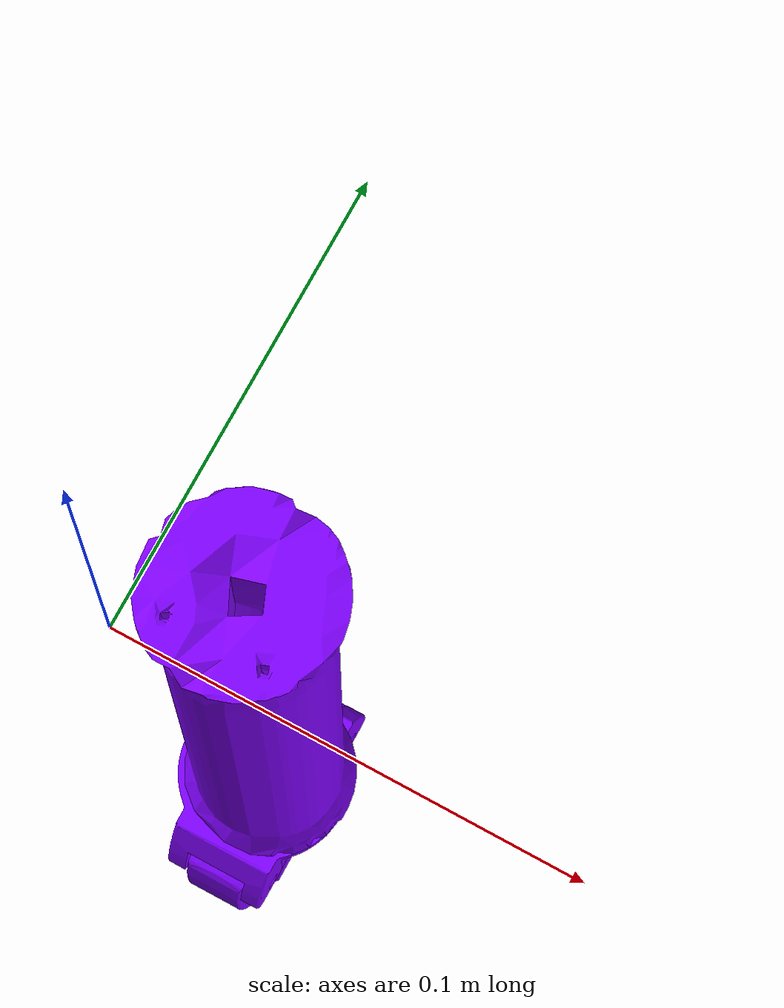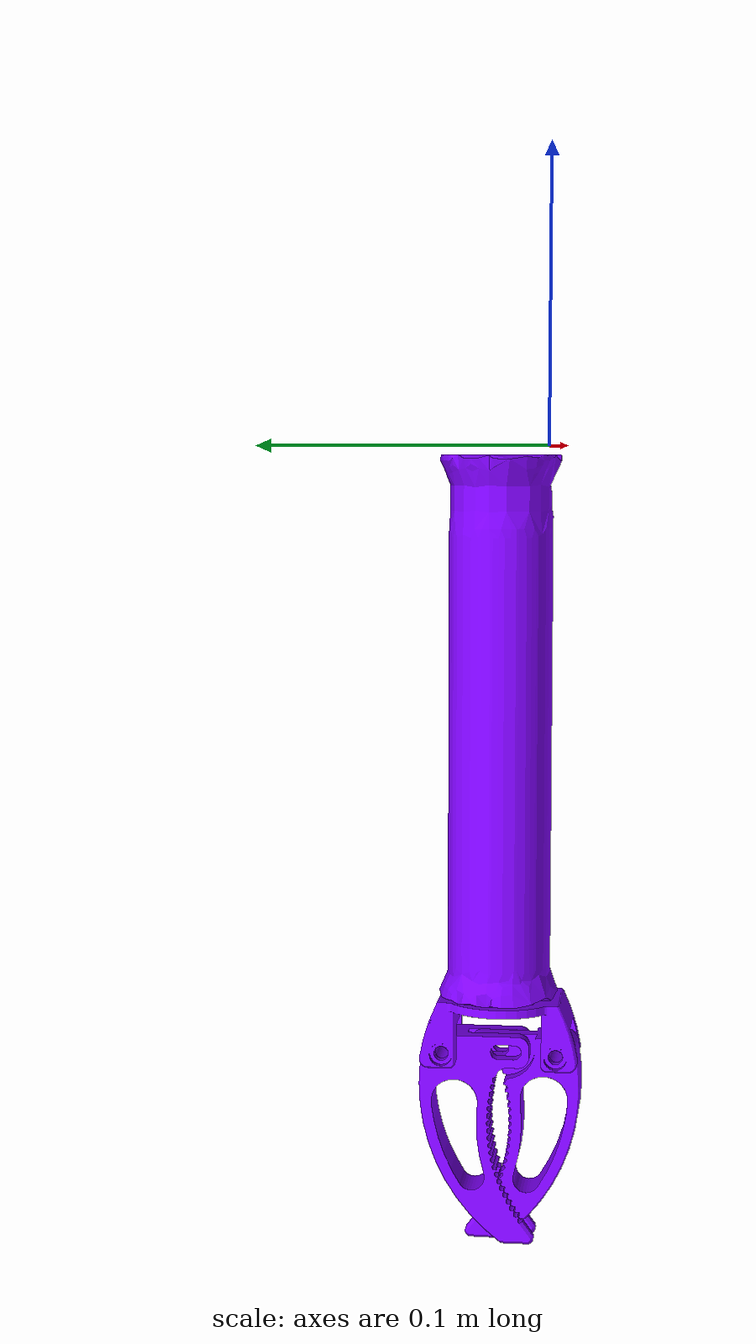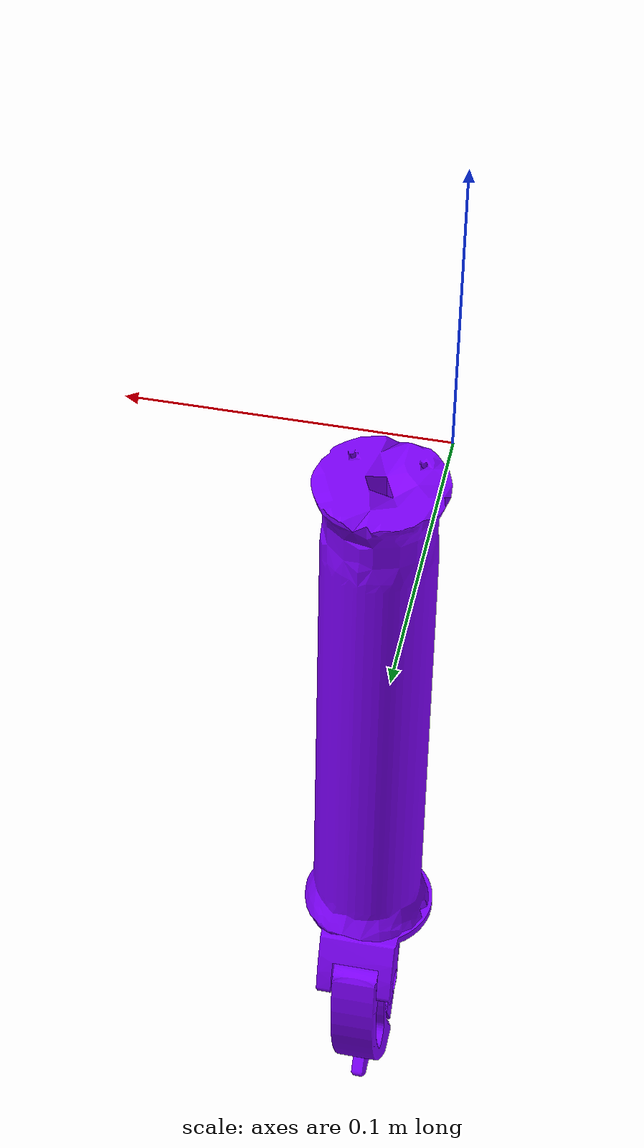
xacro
<?xml version="1.0"?>
<robot name="newton_subsea_gripper" xmlns:xacro="http://ros.org/wiki/xacro">

    <!-- Arm Link -->
    <link name="arm_link">
        <visual>
            <geometry>
                <mesh
                    filename="$(find hippo_sim)/models/newton_subsea_gripper/meshes/arm_visual.stl" />
            </geometry>
            <material name="purple">
                <color rgba="0.5 0 1 1" />
            </material>
        </visual>
        <collision>
            <geometry>
                <mesh filename="$(find hippo_sim)/models/newton_subsea_gripper/meshes/arm.stl" />
            </geometry>
        </collision>
        <inertial>
            <mass value="1.0" />
            <origin xyz="0 0 0" rpy="0 0 0" />
            <inertia ixx="0.1" ixy="0" ixz="0" iyy="0.1" iyz="0" izz="0.1" />
        </inertial>
    </link>

    <!-- Hand Link -->
    <link name="hand">
        <visual>
            <geometry>
                <mesh
                    filename="$(find hippo_sim)/models/newton_subsea_gripper/meshes/hand_visual.stl" />
            </geometry>
            <origin xyz="0 0 0" rpy="0 -3.1415 1.57" />
            <material name="purple" />
        </visual>
        <collision>
            <geometry>
                <mesh filename="$(find hippo_sim)/models/newton_subsea_gripper/meshes/hand.stl" />
            </geometry>
            <origin xyz="0 0 0" rpy="0 -3.1415 1.57" />
        </collision>
    </link>

    <!-- Joint between Arm and Hand -->
    <joint name="arm_hand_joint" type="fixed">
        <parent link="arm_link" />
        <child link="hand" />
        <!-- arm is 195.5 mm long-->
        <!-- offset of 0.035 is needed since the rotation would need to be yaw =-1.57 and not
        1.57-->
        <!-- if correct rotation is used everything aligns but gripper is the wrong way around -->
        <origin xyz="0.035 0.035 -0.1955" rpy="0 0 0" />
    </joint>

    <!-- Left Finger Link -->
    <link name="left_finger">
        <visual>
            <geometry>
                <mesh
                    filename="$(find hippo_sim)/models/newton_subsea_gripper/meshes/jaw_outer_visual.stl" />
            </geometry>
            <origin xyz="0 0 0.0" rpy="3.1415 0 -1.57" />
            <material name="purple" />
        </visual>
        <collision>
            <geometry>
                <mesh filename="$(find hippo_sim)/models/newton_subsea_gripper/meshes/jaw_outer.stl" />
            </geometry>
            <origin xyz="0 0 0.0" rpy="3.1415 0 -1.57" />
        </collision>
        <inertial name="left_finger_inertial">
            <mass value="0.001" />
            <inertia ixx="0.1" ixy="0" ixz="0" iyy="0.1" iyz="0" izz="0.1" />
        </inertial>
    </link>

    <!-- Right Finger Link -->
    <link name="right_finger">
        <visual>
            <geometry>
                <mesh
                    filename="$(find hippo_sim)/models/newton_subsea_gripper/meshes/jaw_inner_visual.stl" />
            </geometry>
            <origin xyz="0 0 0.0" rpy="3.1415 0 -1.57" />
            <material name="purple" />
        </visual>
        <collision>
            <geometry>
                <mesh filename="$(find hippo_sim)/models/newton_subsea_gripper/meshes/jaw_inner.stl" />
            </geometry>
            <origin xyz="0 0 0.0" rpy="3.1415 0 -1.57" />
        </collision>
        <inertial name="right_finger_inertial">
            <mass value="0.001" />
            <inertia ixx="0.1" ixy="0" ixz="0" iyy="0.1" iyz="0" izz="0.1" />
        </inertial>
    </link>
    <!-- Prismatic Joint for Left Finger -->
    <joint name="left_finger_joint" type="revolute">
        <parent link="hand" />
        <child link="left_finger" />
        <origin xyz="0 0 0.0" rpy="0 0 0" />
        <axis xyz="1 0 0" />
        <limit lower="0" upper="0.78" effort="10" velocity="1" />
    </joint>

    <!-- Prismatic Joint for Right Finger -->
    <joint name="right_finger_joint" type="revolute">
        <parent link="hand" />
        <child link="right_finger" />
        <origin xyz="0 0 0.0" rpy="0 0 0" />
        <axis xyz="-1 0 0" />
        <limit lower="0" upper="0.78" effort="10" velocity="1" />
        <mimic joint="left_finger_joint" multiplier="1.0" />
    </joint>

    <ros2_control name="GazeboSystem" type="system">
        <hardware>
            <plugin>gz_ros2_control/GazeboSimSystem</plugin>
        </hardware>
        <joint name="left_finger_joint">
            <command_interface name="position" />
            <state_interface name="position">
                    <!-- pi/4 = 0.78 -->
                <param name="initial_value">0.0</param>
            </state_interface>
            <state_interface name="velocity" />
            <state_interface name="effort" />
        </joint>
        <joint name="right_finger_joint">
            <param name="mimic">left_finger_joint</param>
            <param name="multiplier">1</param>
            <command_interface name="position" />
            <state_interface name="position" />
            <state_interface name="velocity" />
            <state_interface name="effort" />
        </joint>
    </ros2_control>

    <gazebo>
        <plugin filename="/opt/ros/iron/lib/libgz_ros2_control-system.so"
            name="gz_ros2_control::GazeboSimROS2ControlPlugin">
            <parameters>$(find position_control)/config/gripper_controller.yaml</parameters>
        </plugin>
    </gazebo>
</robot>
